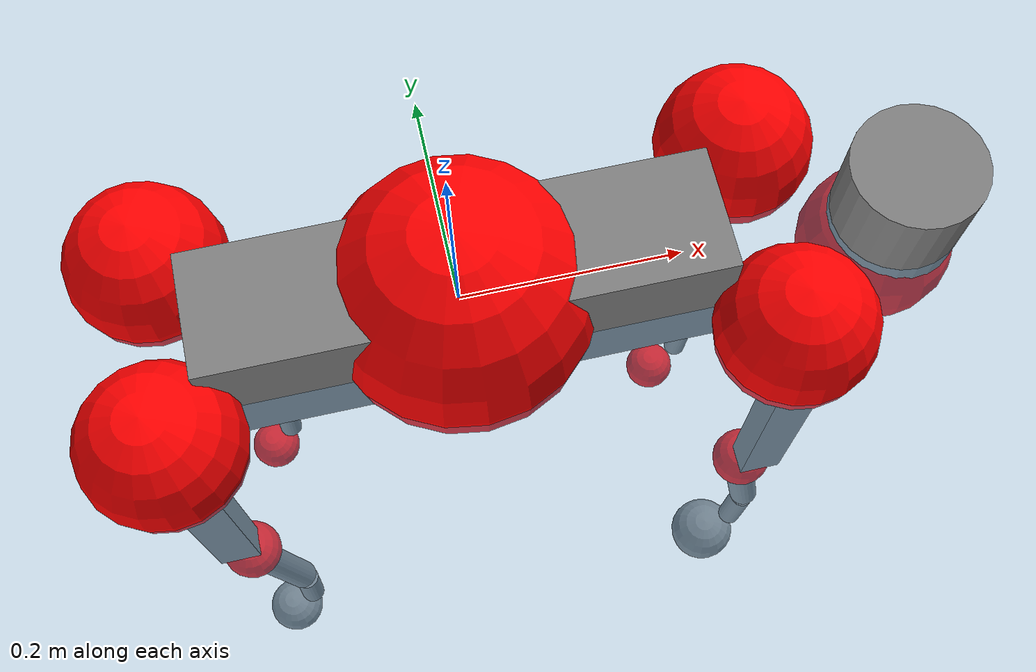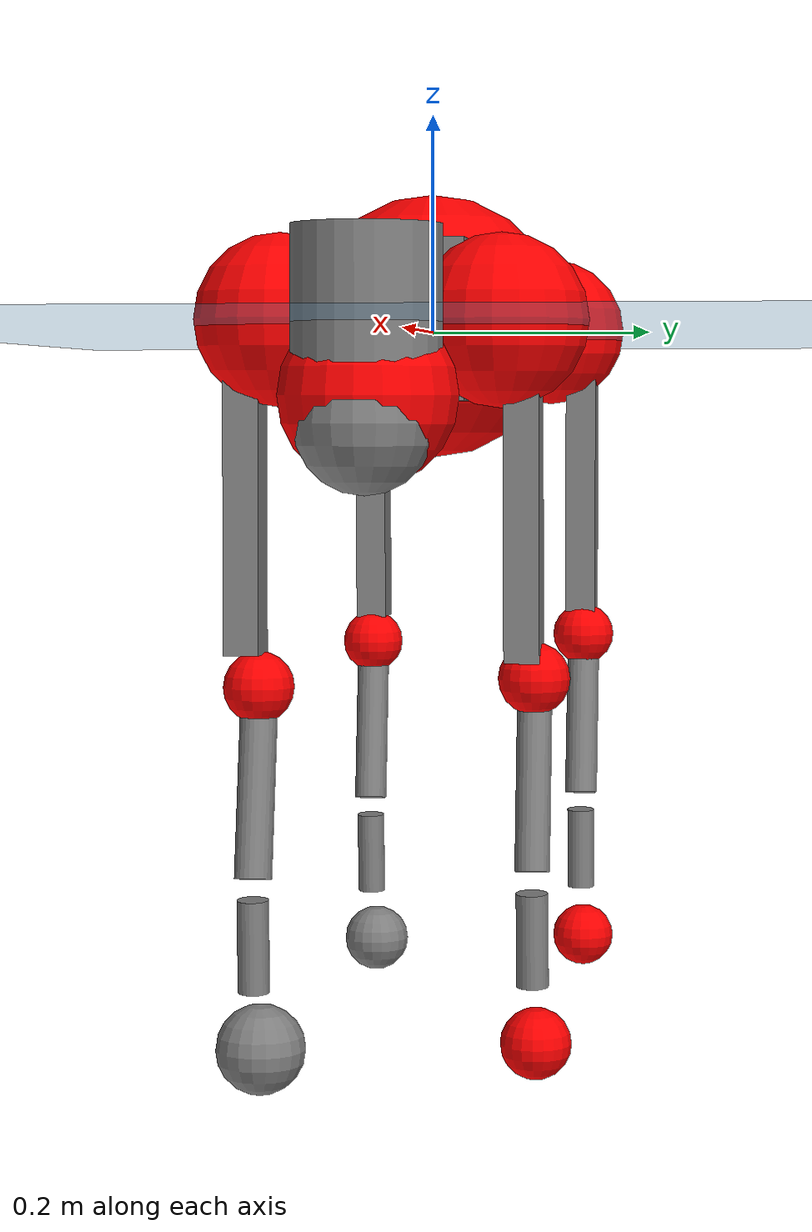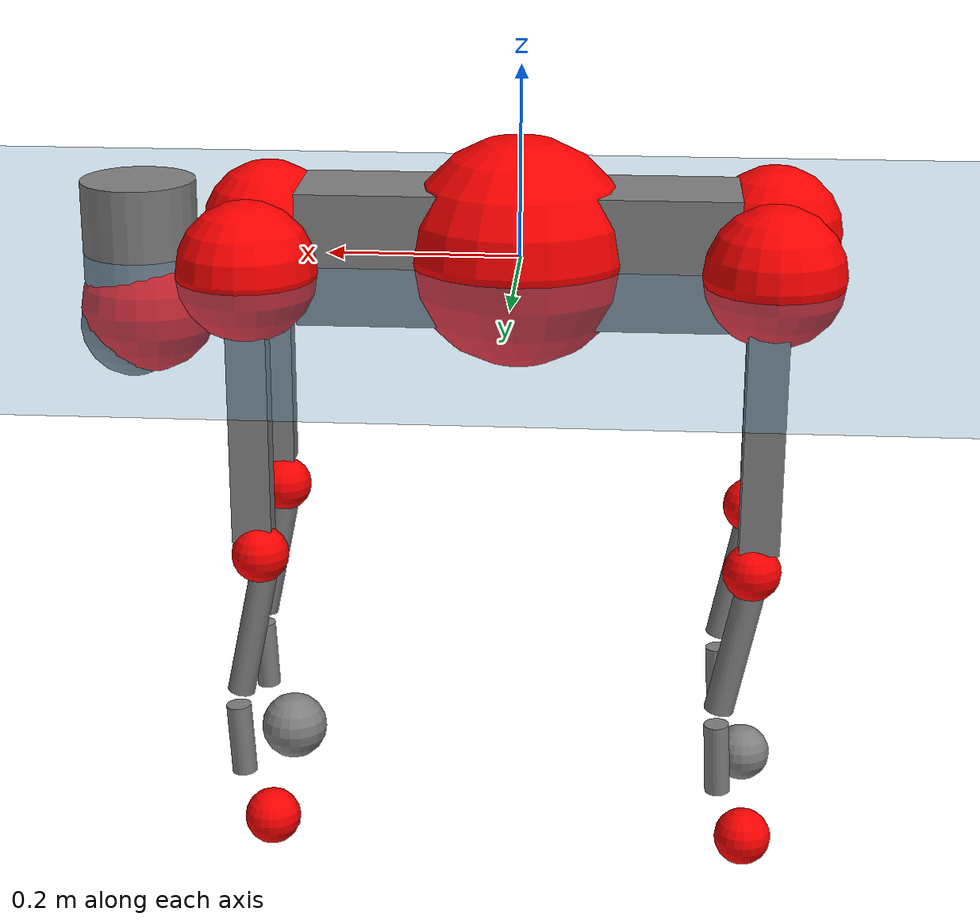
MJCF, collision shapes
<mujoco model="go2">
  <compiler angle="radian" assetdir="assets" balanceinertia="true" inertiafromgeom="false"/>

  <option timestep="0.005" density="1.2" viscosity="2e-05"/>

  <size nkey="1"/>

  <visual>
    <quality shadowsize="8192"/>
    <map shadowclip="0.5"/>
  </visual>

  <default>
    <default class="/">
      <geom contype="0" conaffinity="0" group="1" solref="-1000 -80"/>
      <site size="0.01 0.005 0.005" group="5"/>
      <general forcelimited="true" biastype="affine" gainprm="20" biasprm="0 -20 -0.5"/>
      <default class="go2">
        <joint armature="0.01" damping="0.01" frictionloss="0.2"/>
        <geom condim="1" margin="0.001"/>
        <default class="visual">
          <geom type="mesh" group="2"/>
        </default>
        <default class="collision">
          <geom group="3"/>
          <default class="foot">
            <geom size="0.022 0 0" condim="6" priority="1" friction="0.8 0.02 0.01" solimp="0.015 1 0.022"/>
          </default>
        </default>
        <default class="reward_collision_sphere">
          <geom group="5" rgba="1 0 0 1"/>
        </default>
      </default>
    </default>
  </default>

  <asset>
    <texture type="skybox" colorspace="auto" name="//unnamed_texture_0" builtin="gradient" rgb1="0.95 0.95 0.95" rgb2="0.95 0.95 0.95" width="100" height="600"/>
    <texture type="2d" colorspace="auto" name="texplane" builtin="checker" rgb1="0.345 0.575 0.748" rgb2="0.345 0.575 0.748" markrgb="1 1 1" width="512" height="512"/>
    <material name="MatPlane" class="/" texture="texplane" texuniform="true" texrepeat="2 2" specular="0.9"/>
    <material name="metal" class="/" rgba="0.9 0.95 0.95 1"/>
    <material name="black" class="/" rgba="0 0 0 1"/>
    <material name="white" class="/"/>
    <material name="gray" class="/" rgba="0.671705 0.692426 0.77427 1"/>
    <mesh name="base_0" class="/" file="base_0.obj"/>
    <mesh name="base_1" class="/" file="base_1.obj"/>
    <mesh name="base_2" class="/" file="base_2.obj"/>
    <mesh name="base_3" class="/" file="base_3.obj"/>
    <mesh name="base_4" class="/" file="base_4.obj"/>
    <mesh name="hip_0" class="/" file="hip_0.obj"/>
    <mesh name="hip_1" class="/" file="hip_1.obj"/>
    <mesh name="thigh_0" class="/" file="thigh_0.obj"/>
    <mesh name="thigh_1" class="/" file="thigh_1.obj"/>
    <mesh name="thigh_mirror_0" class="/" file="thigh_mirror_0.obj"/>
    <mesh name="thigh_mirror_1" class="/" file="thigh_mirror_1.obj"/>
    <mesh name="calf_0" class="/" file="calf_0.obj"/>
    <mesh name="calf_1" class="/" file="calf_1.obj"/>
    <mesh name="calf_mirror_0" class="/" file="calf_mirror_0.obj"/>
    <mesh name="calf_mirror_1" class="/" file="calf_mirror_1.obj"/>
    <mesh name="foot" class="/" file="foot.obj"/>
  </asset>

  <worldbody>
    <geom name="floor" class="/" size="100 100 0.125" type="plane" group="0" material="MatPlane"/>
    <light name="toplight_shadow" class="/" pos="0 0 5" dir="0.0990148 0.0990148 -0.990148" type="directional" ambient="0.04 0.04 0.04" diffuse="0.55 0.55 0.55" specular="0.12 0.12 0.12"/>
    <light name="toplight_fill" class="/" pos="0 0 5" dir="0.0990148 0.0990148 -0.990148" type="directional" castshadow="false" ambient="0.04 0.04 0.04" diffuse="0.3 0.3 0.3" specular="0.08 0.08 0.08"/>
    <body name="trunk" childclass="go2" pos="0.00135538 -0.000388013 0.00615106" quat="1 -0.000368535 -0.000212333 0.000350037">
      <inertial pos="0.0367646 0.00890661 -0.0107512" quat="-0.00993703 0.712222 -0.00417949 0.701872" mass="12.3469" diaginertia="0.487593 0.0252177 0.136393"/>
      <joint name="//unnamed_joint_0" type="free" armature="0" damping="0" frictionloss="0"/>
      <geom name="//unnamed_geom_1" class="visual" material="black" mesh="base_0"/>
      <geom name="//unnamed_geom_2" class="visual" material="black" mesh="base_1"/>
      <geom name="//unnamed_geom_3" class="visual" material="black" mesh="base_2"/>
      <geom name="//unnamed_geom_4" class="visual" material="white" mesh="base_3"/>
      <geom name="//unnamed_geom_5" class="visual" material="gray" mesh="base_4"/>
      <geom name="trunk_1" class="collision" size="0.227362 0.0565082 0.0688977" type="box"/>
      <geom name="trunk_2" class="collision" size="0.0604366 0.0543929" pos="0.398545 0 0.0144837" type="cylinder"/>
      <geom name="trunk_3" class="collision" size="0.0568104" pos="0.409733 0 -0.0869022"/>
      <geom name="//unnamed_geom_9" class="reward_collision_sphere" size="0.120873"/>
      <geom name="//unnamed_geom_10" class="reward_collision_sphere" size="0.0725239" pos="0.391553 0 -0.0651767"/>
      <site name="imu" pos="0.0189296 -0.00376649 0.0174182" size="0.0120873"/>
      <camera name="track" pos="0 -1.55884 0" quat="0.707107 0.707107 0 0" mode="trackcom"/>
      <camera name="ego_camera" pos="0.436302 0 0.0651767" quat="-0.5 -0.5 0.5 0.5"/>
      <body name="FL_hip" pos="0.271028 0.0385196 -0.00272427" quat="0.999998 0.00191965 0.000538922 -0.000601571">
        <inertial pos="-0.0165519 0.00541215 -0.00222165" quat="0.508928 0.481538 0.516304 0.492488" mass="1.30731" diaginertia="0.00518469 0.000164359 0.00292823"/>
        <joint name="FL_hip_joint" pos="0 0 0" axis="0.999421 0.000188032 0.0340137" stiffness="0.00408133" range="-1.08475 0.957985" armature="0.00603823" damping="0.0567172" frictionloss="0.239423"/>
        <geom name="//unnamed_geom_11" class="visual" material="metal" mesh="hip_0"/>
        <geom name="//unnamed_geom_12" class="visual" material="gray" mesh="hip_1"/>
        <geom name="//unnamed_geom_13" class="collision" size="0.0556017 0.0241746" pos="0 0.0623536 0" quat="0.707107 0.707107 0 0" type="cylinder"/>
        <geom name="//unnamed_geom_14" class="reward_collision_sphere" size="0.0725239" pos="0 0.0545594 0"/>
        <body name="FL_thigh" pos="-0.00145682 0.0718851 -9.37091e-05" quat="0.999999 0.000405142 -0.000159225 0.00116034">
          <inertial pos="-0.00806216 -0.0174511 -0.0566604" quat="0.82921 0.0801715 -0.0227189 0.552691" mass="1.94199" diaginertia="0.036242 0.0017209 0.0056942"/>
          <joint name="FL_thigh_joint" pos="0 0 0" axis="0.0113159 0.998609 -0.0514922" range="-1.55591 3.49635" armature="0.0123114" damping="0.0158789" frictionloss="0.347813"/>
          <geom name="//unnamed_geom_15" class="visual" material="metal" mesh="thigh_0"/>
          <geom name="//unnamed_geom_16" class="visual" material="gray" mesh="thigh_1"/>
          <geom name="//unnamed_geom_17" class="collision" size="0.12873 0.014807 0.0205484" pos="0 0 -0.154251" quat="0.707107 0 0.707107 0" type="box"/>
          <body name="FL_calf" pos="-0.00771137 0.00794956 -0.297583" quat="0.999993 0.000493015 0.00295868 0.00242632">
            <inertial pos="0.00932262 0.000394369 -0.204078" quat="0.709693 0.00247387 -0.000706237 0.704506" mass="0.43949" diaginertia="0.00834797 0.000423772 0.000358373"/>
            <joint name="FL_calf_joint" pos="0 0 0" axis="-0.0163803 0.996485 0.0821592" range="-2.60819 -0.887589" armature="0.00991274" damping="0.0480717" frictionloss="0.176866"/>
            <geom name="//unnamed_geom_18" class="visual" material="gray" mesh="calf_0"/>
            <geom name="//unnamed_geom_19" class="visual" material="black" mesh="calf_1"/>
            <geom name="FL_calf0" class="collision" size="0.0145048 0.0725239" pos="0.0111872 0 -0.0869022" quat="0.994493 0 -0.104807 0" type="cylinder"/>
            <geom name="//unnamed_geom_21" class="collision" size="0.013296 0.0392838" pos="0.0279681 0 -0.214359" quat="0.999688 0 0.0249974 0" type="cylinder"/>
            <geom name="//unnamed_geom_22" class="visual" pos="0 0 -0.308503" quat="1 0 0 0" material="black" mesh="foot"/>
            <geom name="FL_foot" class="foot" size="0.0242131" pos="-0.00279681 0 -0.308503"/>
            <geom name="//unnamed_geom_24" class="reward_collision_sphere" size="0.0302183"/>
            <geom name="//unnamed_geom_25" class="reward_collision_sphere" size="0.0302183" pos="-0.00279681 0 -0.308503"/>
            <site name="FL_foot" class="foot" pos="-0.00279681 0 -0.308503" size="0.0120873"/>
          </body>
        </body>
      </body>
      <body name="FR_hip" pos="0.275969 -0.0368905 -0.001989" quat="1 -2.69089e-05 1.00512e-05 4.19077e-05">
        <inertial pos="-0.0161803 -0.00242605 0.00120869" quat="0.498046 0.504953 0.493851 0.503074" mass="1.12877" diaginertia="0.00459058 0.000150929 0.00285242"/>
        <joint name="FR_hip_joint" pos="0 0 0" axis="0.999918 -0.0127468 0.000909276" stiffness="0.00969143" range="-0.863367 1.05699" armature="0.0170134" damping="0" frictionloss="0.349373"/>
        <geom name="//unnamed_geom_26" class="visual" pos="0 -5.82762e-09 -2.49959e-07" quat="4.63268e-05 1 0 0" material="metal" mesh="hip_0"/>
        <geom name="//unnamed_geom_27" class="visual" pos="0 -9.44727e-09 6.18243e-07" quat="4.63268e-05 1 0 0" material="gray" mesh="hip_1"/>
        <geom name="//unnamed_geom_28" class="collision" size="0.0556017 0.0241746" pos="0 -0.0623536 0" quat="0.707107 0.707107 0 0" type="cylinder"/>
        <geom name="//unnamed_geom_29" class="reward_collision_sphere" size="0.0725239" pos="0 -0.0545594 0"/>
        <body name="FR_thigh" pos="0.00307758 -0.0842658 0.00389088" quat="1 -0.000232511 -0.000210115 -0.000125587">
          <inertial pos="-0.00581345 0.0179667 -0.0488025" quat="0.563086 -0.0514194 0.1078 0.817722" mass="2.48665" diaginertia="0.0351905 0.00170504 0.00583257"/>
          <joint name="FR_thigh_joint" pos="0 0 0" axis="0.0346202 -0.999357 -0.00933959" stiffness="0.0200607" range="-3.70563 1.45559" armature="0.0118676" damping="0.0425327" frictionloss="0.0973398"/>
          <geom name="//unnamed_geom_30" class="visual" material="metal" mesh="thigh_mirror_0"/>
          <geom name="//unnamed_geom_31" class="visual" material="gray" mesh="thigh_mirror_1"/>
          <geom name="//unnamed_geom_32" class="collision" size="0.12873 0.014807 0.0205484" pos="0 0 -0.154251" quat="0.707107 0 0.707107 0" type="box"/>
          <body name="FR_calf" pos="-0.00877415 0.00967298 -0.311327" quat="1 0.000301372 0.000316793 -0.000527677">
            <inertial pos="0.00764439 -0.0011096 -0.214427" quat="0.717011 0.000999369 0.0142795 0.696915" mass="0.422996" diaginertia="0.00902484 0.000460543 0.000345656"/>
            <joint name="FR_calf_joint" pos="0 0 0" axis="0.00894663 -0.99985 -0.014848" stiffness="0.00134364" range="0.935712 2.61441" armature="0.0130496" damping="0.010605" frictionloss="0.366444"/>
            <geom name="//unnamed_geom_33" class="visual" material="gray" mesh="calf_mirror_0"/>
            <geom name="//unnamed_geom_34" class="visual" material="black" mesh="calf_mirror_1"/>
            <geom name="FR_calf0" class="collision" size="0.0157135 0.0725239" pos="0.013984 0 -0.0869022" quat="0.995004 0 -0.0998334 0" type="cylinder"/>
            <geom name="//unnamed_geom_36" class="collision" size="0.013296 0.0392838" pos="0.0279681 0 -0.214359" quat="0.999688 0 0.0249974 0" type="cylinder"/>
            <geom name="//unnamed_geom_37" class="visual" pos="0 0 -0.308503" quat="1 0 0 0" material="black" mesh="foot"/>
            <geom name="FR_foot" class="foot" size="0.0384923" pos="-0.00279681 0 -0.308503"/>
            <geom name="//unnamed_geom_39" class="reward_collision_sphere" size="0.0302183"/>
            <geom name="//unnamed_geom_40" class="reward_collision_sphere" size="0.0302183" pos="-0.00279681 0 -0.308503"/>
            <site name="FR_foot" class="foot" pos="-0.00279681 0 -0.308503" size="0.0120873"/>
          </body>
        </body>
      </body>
      <body name="RL_hip" pos="-0.259804 0.0332356 0.00143093" quat="1 -0.00043834 0.000259528 -0.000183384">
        <inertial pos="0.00423403 -0.00778907 0.00190891" quat="0.526748 0.486269 0.492742 0.493239" mass="1.20769" diaginertia="0.0053439 0.000164401 0.00374465"/>
        <joint name="RL_hip_joint" pos="0 0 0" axis="-0.999958 -0.00585516 -0.00701371" stiffness="0.0118537" range="-1.09319 1.28584" armature="0.0180127" damping="0.0308037" frictionloss="0.220898"/>
        <geom name="//unnamed_geom_41" class="visual" pos="4.35281e-10 0 8.53251e-08" quat="4.63268e-05 0 1 0" material="metal" mesh="hip_0"/>
        <geom name="//unnamed_geom_42" class="visual" pos="7.05642e-10 0 7.56712e-08" quat="4.63268e-05 0 1 0" material="gray" mesh="hip_1"/>
        <geom name="//unnamed_geom_43" class="collision" size="0.0556017 0.0241746" pos="0 0.0623536 0" quat="0.707107 0.707107 0 0" type="cylinder"/>
        <geom name="//unnamed_geom_44" class="reward_collision_sphere" size="0.0725239" pos="0 0.0545594 0"/>
        <body name="RL_thigh" pos="0.00546147 0.0861272 0.000835427" quat="1 -1.53783e-05 -1.2172e-05 2.35109e-05">
          <inertial pos="-0.00450261 -0.0250561 -0.0478978" quat="0.832097 0.0892192 -0.0223177 0.546952" mass="2.03132" diaginertia="0.0317476 0.00177569 0.00547008"/>
          <joint name="RL_thigh_joint" pos="0 0 0" axis="0.00129171 0.999182 -0.04043" range="-0.491461 4.51126" armature="0.0144695" damping="0.0257962" frictionloss="0.216837"/>
          <geom name="//unnamed_geom_45" class="visual" material="metal" mesh="thigh_0"/>
          <geom name="//unnamed_geom_46" class="visual" material="gray" mesh="thigh_1"/>
          <geom name="//unnamed_geom_47" class="collision" size="0.12873 0.014807 0.0205484" pos="0 0 -0.154251" quat="0.707107 0 0.707107 0" type="box"/>
          <body name="RL_calf" pos="0.00556889 0.00256649 -0.306134" quat="0.999999 0.00117581 0.000480819 0.00040789">
            <inertial pos="0.00921332 0.000305043 -0.206937" quat="0.699784 0.0250053 -0.0568774 0.711647" mass="0.434749" diaginertia="0.00825081 0.000432603 0.000391294"/>
            <joint name="RL_calf_joint" pos="0 0 0" axis="-0.00740358 0.999414 -0.033432" stiffness="0.00222538" range="-2.74032 -0.836063" armature="0.0160246" damping="0.00194025" frictionloss="0.173545"/>
            <geom name="//unnamed_geom_48" class="visual" material="gray" mesh="calf_0"/>
            <geom name="//unnamed_geom_49" class="visual" material="black" mesh="calf_1"/>
            <geom name="RL_calf0" class="collision" size="0.0157135 0.0725239" pos="0.013984 0 -0.0869022" quat="0.995004 0 -0.0998334 0" type="cylinder"/>
            <geom name="//unnamed_geom_51" class="collision" size="0.013296 0.0392838" pos="0.0279681 0 -0.214359" quat="0.999688 0 0.0249974 0" type="cylinder"/>
            <geom name="//unnamed_geom_52" class="visual" pos="0 0 -0.308503" quat="1 0 0 0" material="black" mesh="foot"/>
            <geom name="RL_foot" class="foot" size="0.0150233" pos="-0.00279681 0 -0.308503"/>
            <geom name="//unnamed_geom_54" class="reward_collision_sphere" size="0.0302183"/>
            <geom name="//unnamed_geom_55" class="reward_collision_sphere" size="0.0302183" pos="-0.00279681 0 -0.308503"/>
            <site name="RL_foot" class="foot" pos="-0.00279681 0 -0.308503" size="0.0120873"/>
          </body>
        </body>
      </body>
      <body name="RR_hip" pos="-0.268172 -0.0269053 0.00348445" quat="0.999994 0.00301923 0.0010979 -0.00158619">
        <inertial pos="0.0170934 -0.00322784 -0.00856464" quat="0.495939 0.498563 0.496624 0.508768" mass="1.24939" diaginertia="0.00503302 0.000180449 0.00362206"/>
        <joint name="RR_hip_joint" pos="0 0 0" axis="-0.999986 0.00327404 -0.00413266" stiffness="0.0190859" range="-0.885569 0.83338" armature="0.0121369" damping="0.0380229" frictionloss="0.252731"/>
        <geom name="//unnamed_geom_56" class="visual" pos="-4.56711e-10 -5.82762e-09 3.35284e-07" quat="2.14617e-09 4.63268e-05 4.63268e-05 -1" material="metal" mesh="hip_0"/>
        <geom name="//unnamed_geom_57" class="visual" pos="-6.52639e-10 -9.44727e-09 -5.42572e-07" quat="2.14617e-09 4.63268e-05 4.63268e-05 -1" material="gray" mesh="hip_1"/>
        <geom name="//unnamed_geom_58" class="collision" size="0.0556017 0.0241746" pos="0 -0.0623536 0" quat="0.707107 0.707107 0 0" type="cylinder"/>
        <geom name="//unnamed_geom_59" class="reward_collision_sphere" size="0.0725239" pos="0 -0.0545594 0"/>
        <body name="RR_thigh" pos="0.00231503 -0.0707539 -0.00952452" quat="1 0.000300321 -0.000181553 0.000480079">
          <inertial pos="-0.011579 0.0177456 -0.047156" quat="0.551577 -0.0183162 0.0840464 0.829677" mass="2.63163" diaginertia="0.0401624 0.00196417 0.00638247"/>
          <joint name="RR_thigh_joint" pos="0 0 0" axis="0.0356303 -0.999258 -0.0146101" range="-4.50897 0.540246" armature="0.0136903" damping="0.0140325" frictionloss="0.256035"/>
          <geom name="//unnamed_geom_60" class="visual" material="metal" mesh="thigh_mirror_0"/>
          <geom name="//unnamed_geom_61" class="visual" material="gray" mesh="thigh_mirror_1"/>
          <geom name="//unnamed_geom_62" class="collision" size="0.12873 0.014807 0.0205484" pos="0 0 -0.154251" quat="0.707107 0 0.707107 0" type="box"/>
          <body name="RR_calf" pos="0.00921816 0.000238563 -0.307896" quat="0.999998 0.00143501 5.14758e-05 0.00119036">
            <inertial pos="0.0113427 0.00100793 -0.203361" quat="0.691509 0.0321361 -0.00455449 0.721639" mass="0.439631" diaginertia="0.00857596 0.000386546 0.000352528"/>
            <joint name="RR_calf_joint" pos="0 0 0" axis="-0.0224075 -0.999743 -0.00348132" range="0.839795 2.75435" armature="0.0184067" damping="0.00502664" frictionloss="0.237228"/>
            <geom name="//unnamed_geom_63" class="visual" material="gray" mesh="calf_mirror_0"/>
            <geom name="//unnamed_geom_64" class="visual" material="black" mesh="calf_mirror_1"/>
            <geom name="RR_calf0" class="collision" size="0.0157135 0.0725239" pos="0.013984 0 -0.0869022" quat="0.995004 0 -0.0998334 0" type="cylinder"/>
            <geom name="//unnamed_geom_66" class="collision" size="0.013296 0.0392838" pos="0.0279681 0 -0.214359" quat="0.999688 0 0.0249974 0" type="cylinder"/>
            <geom name="//unnamed_geom_67" class="visual" pos="0 0 -0.308503" quat="1 0 0 0" material="black" mesh="foot"/>
            <geom name="RR_foot" class="foot" size="0.0321995" pos="-0.00279681 0 -0.308503"/>
            <geom name="//unnamed_geom_69" class="reward_collision_sphere" size="0.0302183"/>
            <geom name="//unnamed_geom_70" class="reward_collision_sphere" size="0.0302183" pos="-0.00279681 0 -0.308503"/>
            <site name="RR_foot" class="foot" pos="-0.00279681 0 -0.308503" size="0.0120873"/>
          </body>
        </body>
      </body>
    </body>
  </worldbody>

  <contact>
    <pair class="/" geom1="floor" geom2="FL_foot" name="//unnamed_contact_0"/>
    <pair class="/" geom1="floor" geom2="FR_foot" name="//unnamed_contact_1"/>
    <pair class="/" geom1="floor" geom2="RL_foot" name="//unnamed_contact_2"/>
    <pair class="/" geom1="floor" geom2="RR_foot" name="//unnamed_contact_3"/>
  </contact>

  <actuator>
    <general name="FL_hip" class="/" joint="FL_hip_joint" forcerange="-28.1877 28.1877" gainprm="24.1156" biasprm="0 -24.1156 -0.611278"/>
    <general name="FL_thigh" class="/" joint="FL_thigh_joint" forcerange="-33.6411 33.6411" gainprm="24.1156" biasprm="0 -24.1156 -0.611278"/>
    <general name="FL_calf" class="/" joint="FL_calf_joint" forcerange="-56.4421 56.4421" gainprm="24.1156" biasprm="0 -24.1156 -0.611278"/>
    <general name="FR_hip" class="/" joint="FR_hip_joint" forcerange="-34.2486 34.2486" gainprm="24.1156" biasprm="0 -24.1156 -0.611278"/>
    <general name="FR_thigh" class="/" joint="FR_thigh_joint" forcerange="-25.027 25.027" gainprm="24.1156" biasprm="0 -24.1156 -0.611278"/>
    <general name="FR_calf" class="/" joint="FR_calf_joint" forcerange="-72.5169 72.5169" gainprm="24.1156" biasprm="0 -24.1156 -0.611278"/>
    <general name="RL_hip" class="/" joint="RL_hip_joint" forcerange="-28.5456 28.5456" gainprm="24.1156" biasprm="0 -24.1156 -0.611278"/>
    <general name="RL_thigh" class="/" joint="RL_thigh_joint" forcerange="-38.0972 38.0972" gainprm="24.1156" biasprm="0 -24.1156 -0.611278"/>
    <general name="RL_calf" class="/" joint="RL_calf_joint" forcerange="-56.0717 56.0717" gainprm="24.1156" biasprm="0 -24.1156 -0.611278"/>
    <general name="RR_hip" class="/" joint="RR_hip_joint" forcerange="-30.5603 30.5603" gainprm="24.1156" biasprm="0 -24.1156 -0.611278"/>
    <general name="RR_thigh" class="/" joint="RR_thigh_joint" forcerange="-39.5861 39.5861" gainprm="24.1156" biasprm="0 -24.1156 -0.611278"/>
    <general name="RR_calf" class="/" joint="RR_calf_joint" forcerange="-38.5035 38.5035" gainprm="24.1156" biasprm="0 -24.1156 -0.611278"/>
  </actuator>

  <sensor>
    <gyro site="imu" name="imu_angular_velocity"/>
    <velocimeter site="imu" name="imu_linear_velocity"/>
    <framelinvel objtype="site" objname="FL_foot" name="FL_foot_global_linear_velocity"/>
    <framelinvel objtype="site" objname="FR_foot" name="FR_foot_global_linear_velocity"/>
    <framelinvel objtype="site" objname="RL_foot" name="RL_foot_global_linear_velocity"/>
    <framelinvel objtype="site" objname="RR_foot" name="RR_foot_global_linear_velocity"/>
  </sensor>

  <keyframe>
    <key name="home" qpos="0 0 0.325 1 0 0 0 0.1 0.8 -1.5 -0.1 -0.8 1.5 -0.1 0.8 -1.5 0.1 -0.8 1.5"/>
  </keyframe>
</mujoco>
